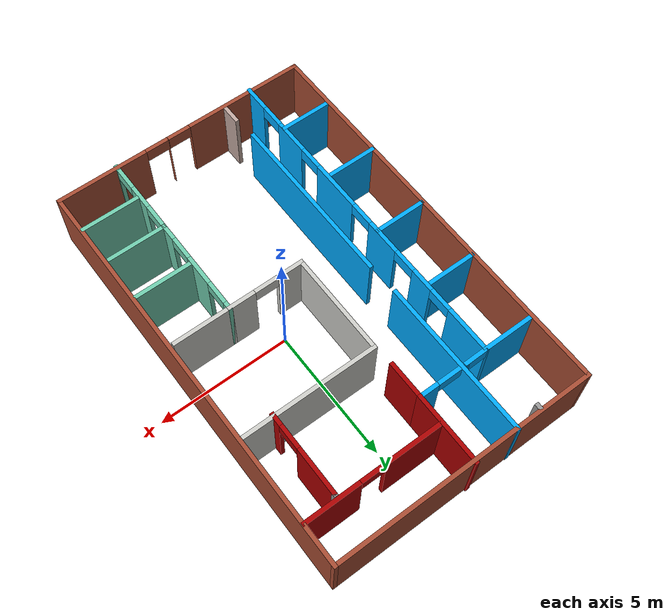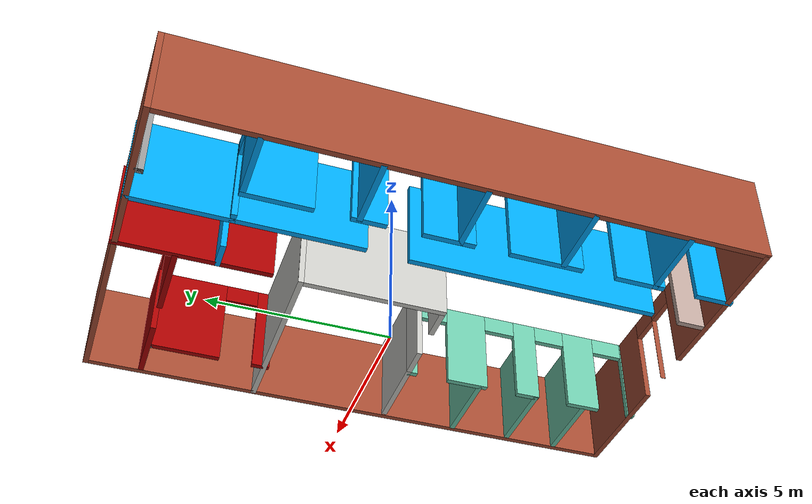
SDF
<?xml version='1.0'?>
<sdf version='1.6'>
  <model name='YTUMECHATRONICS'>
    <pose frame=''>-1.21887 -0.118428 0 0 -0 0</pose>
    <link name='Wall_1'>
      <collision name='Wall_1_Collision'>
        <geometry>
          <box>
            <size>10 0.15 2.5</size>
          </box>
        </geometry>
        <pose frame=''>0 0 1.25 0 -0 0</pose>
      </collision>
      <visual name='Wall_1_Visual'>
        <pose frame=''>0 0 1.25 0 -0 0</pose>
        <geometry>
          <box>
            <size>10 0.15 2.5</size>
          </box>
        </geometry>
        <material>
          <script>
            <uri>file://media/materials/scripts/gazebo.material</uri>
            <name>Gazebo/Bricks</name>
          </script>
          <ambient>0 0.666667 1 1</ambient>
        </material>
      </visual>
      <pose frame=''>0 7.67364 0 0 -0 0</pose>
    </link>
    <link name='Wall_14'>
      <pose frame=''>-1.22206 5.1306 0 0 -0 0</pose>
      <visual name='Wall_14_Visual_0'>
        <pose frame=''>-0.846683 0 1.25 0 -0 0</pose>
        <geometry>
          <box>
            <size>0.306633 0.15 2.5</size>
          </box>
        </geometry>
        <material>
          <script>
            <uri>file://media/materials/scripts/gazebo.material</uri>
            <name>Gazebo/Grey</name>
          </script>
          <ambient>0 0.666667 1 1</ambient>
        </material>
      </visual>
      <collision name='Wall_14_Collision_0'>
        <geometry>
          <box>
            <size>0.306633 0.15 2.5</size>
          </box>
        </geometry>
        <pose frame=''>-0.846683 0 1.25 0 -0 0</pose>
      </collision>
      <visual name='Wall_14_Visual_1'>
        <pose frame=''>0.603317 0 1.25 0 -0 0</pose>
        <geometry>
          <box>
            <size>0.793367 0.15 2.5</size>
          </box>
        </geometry>
        <material>
          <script>
            <uri>file://media/materials/scripts/gazebo.material</uri>
            <name>Gazebo/Grey</name>
          </script>
          <ambient>0 0.666667 1 1</ambient>
        </material>
      </visual>
      <collision name='Wall_14_Collision_1'>
        <geometry>
          <box>
            <size>0.793367 0.15 2.5</size>
          </box>
        </geometry>
        <pose frame=''>0.603317 0 1.25 0 -0 0</pose>
      </collision>
      <visual name='Wall_14_Visual_2'>
        <pose frame=''>-0.243367 0 2.25 0 -0 0</pose>
        <geometry>
          <box>
            <size>0.9 0.15 0.5</size>
          </box>
        </geometry>
        <material>
          <script>
            <uri>file://media/materials/scripts/gazebo.material</uri>
            <name>Gazebo/Grey</name>
          </script>
          <ambient>0 0.666667 1 1</ambient>
        </material>
      </visual>
      <collision name='Wall_14_Collision_2'>
        <geometry>
          <box>
            <size>0.9 0.15 0.5</size>
          </box>
        </geometry>
        <pose frame=''>-0.243367 0 2.25 0 -0 0</pose>
      </collision>
    </link>
    <link name='Wall_15'>
      <collision name='Wall_15_Collision'>
        <geometry>
          <box>
            <size>2.75 0.15 2.5</size>
          </box>
        </geometry>
        <pose frame=''>0 0 1.25 0 -0 0</pose>
      </collision>
      <visual name='Wall_15_Visual'>
        <pose frame=''>0 0 1.25 0 -0 0</pose>
        <geometry>
          <box>
            <size>2.75 0.15 2.5</size>
          </box>
        </geometry>
        <material>
          <script>
            <uri>file://media/materials/scripts/gazebo.material</uri>
            <name>Gazebo/Grey</name>
          </script>
          <ambient>0.666667 0 0 1</ambient>
        </material>
      </visual>
      <pose frame=''>-0.297062 6.4306 0 0 -0 1.5708</pose>
    </link>
    <link name='Wall_18'>
      <collision name='Wall_18_Collision'>
        <geometry>
          <box>
            <size>0.15 0.15 2.5</size>
          </box>
        </geometry>
        <pose frame=''>0 0 1.25 0 -0 0</pose>
      </collision>
      <visual name='Wall_18_Visual'>
        <pose frame=''>0 0 1.25 0 -0 0</pose>
        <geometry>
          <box>
            <size>0.15 0.15 2.5</size>
          </box>
        </geometry>
        <material>
          <script>
            <uri>file://media/materials/scripts/gazebo.material</uri>
            <name>Gazebo/Grey</name>
          </script>
          <ambient>1 1 1 1</ambient>
        </material>
      </visual>
      <pose frame=''>-2.97635 7.48888 0 0 -0 0</pose>
    </link>
    <link name='Wall_19'>
      <collision name='Wall_19_Collision'>
        <geometry>
          <box>
            <size>0.15 0.15 2.5</size>
          </box>
        </geometry>
        <pose frame=''>0 0 1.25 0 -0 0</pose>
      </collision>
      <visual name='Wall_19_Visual'>
        <pose frame=''>0 0 1.25 0 -0 0</pose>
        <geometry>
          <box>
            <size>0.15 0.15 2.5</size>
          </box>
        </geometry>
        <material>
          <script>
            <uri>file://media/materials/scripts/gazebo.material</uri>
            <name>Gazebo/Grey</name>
          </script>
          <ambient>1 1 1 1</ambient>
        </material>
      </visual>
      <pose frame=''>-2.97635 7.48888 0 0 -0 0</pose>
    </link>
    <link name='Wall_20'>
      <collision name='Wall_20_Collision'>
        <geometry>
          <box>
            <size>0.25 0.15 2.5</size>
          </box>
        </geometry>
        <pose frame=''>0 0 1.25 0 -0 0</pose>
      </collision>
      <visual name='Wall_20_Visual'>
        <pose frame=''>0 0 1.25 0 -0 0</pose>
        <geometry>
          <box>
            <size>0.25 0.15 2.5</size>
          </box>
        </geometry>
        <material>
          <script>
            <uri>file://media/materials/scripts/gazebo.material</uri>
            <name>Gazebo/Grey</name>
          </script>
          <ambient>1 1 1 1</ambient>
        </material>
      </visual>
      <pose frame=''>-2.97635 7.53888 0 0 -0 1.5708</pose>
    </link>
    <link name='Wall_22'>
      <collision name='Wall_22_Collision'>
        <geometry>
          <box>
            <size>2 0.15 2.5</size>
          </box>
        </geometry>
        <pose frame=''>0 0 1.25 0 -0 0</pose>
      </collision>
      <visual name='Wall_22_Visual'>
        <pose frame=''>0 0 1.25 0 -0 0</pose>
        <geometry>
          <box>
            <size>2 0.15 2.5</size>
          </box>
        </geometry>
        <material>
          <script>
            <uri>file://media/materials/scripts/gazebo.material</uri>
            <name>Gazebo/Grey</name>
          </script>
          <ambient>0 0.666667 1 1</ambient>
        </material>
      </visual>
      <pose frame=''>-3.89493 5.1194 0 0 -0 3.14159</pose>
    </link>
    <link name='Wall_26'>
      <collision name='Wall_26_Collision'>
        <geometry>
          <box>
            <size>1.5 0.15 2.5</size>
          </box>
        </geometry>
        <pose frame=''>0 0 1.25 0 -0 0</pose>
      </collision>
      <visual name='Wall_26_Visual'>
        <pose frame=''>0 0 1.25 0 -0 0</pose>
        <geometry>
          <box>
            <size>1.5 0.15 2.5</size>
          </box>
        </geometry>
        <material>
          <script>
            <uri>file://media/materials/scripts/gazebo.material</uri>
            <name>Gazebo/Grey</name>
          </script>
          <ambient>0.666667 0 0 1</ambient>
        </material>
      </visual>
      <pose frame=''>-0.297062 4.4556 0 0 0 -1.5708</pose>
    </link>
    <link name='Wall_29'>
      <pose frame=''>2.63338 -4.29756 0 0 -0 1.5708</pose>
      <visual name='Wall_29_Visual_0'>
        <pose frame=''>-3.38464 0 1.25 0 -0 0</pose>
        <geometry>
          <box>
            <size>0.230713 0.15 2.5</size>
          </box>
        </geometry>
        <material>
          <script>
            <uri>file://media/materials/scripts/gazebo.material</uri>
            <name>Gazebo/Grey</name>
          </script>
          <ambient>0.435294 0.796078 0.67451 1</ambient>
        </material>
      </visual>
      <collision name='Wall_29_Collision_0'>
        <geometry>
          <box>
            <size>0.230713 0.15 2.5</size>
          </box>
        </geometry>
        <pose frame=''>-3.38464 0 1.25 0 -0 0</pose>
      </collision>
      <visual name='Wall_29_Visual_1'>
        <pose frame=''>-1.88395 0 1.25 0 -0 0</pose>
        <geometry>
          <box>
            <size>0.970676 0.15 2.5</size>
          </box>
        </geometry>
        <material>
          <script>
            <uri>file://media/materials/scripts/gazebo.material</uri>
            <name>Gazebo/Grey</name>
          </script>
          <ambient>0.435294 0.796078 0.67451 1</ambient>
        </material>
      </visual>
      <collision name='Wall_29_Collision_1'>
        <geometry>
          <box>
            <size>0.970676 0.15 2.5</size>
          </box>
        </geometry>
        <pose frame=''>-1.88395 0 1.25 0 -0 0</pose>
      </collision>
      <visual name='Wall_29_Visual_2'>
        <pose frame=''>-0.157756 0 1.25 0 -0 0</pose>
        <geometry>
          <box>
            <size>0.68171 0.15 2.5</size>
          </box>
        </geometry>
        <material>
          <script>
            <uri>file://media/materials/scripts/gazebo.material</uri>
            <name>Gazebo/Grey</name>
          </script>
          <ambient>0.435294 0.796078 0.67451 1</ambient>
        </material>
      </visual>
      <collision name='Wall_29_Collision_2'>
        <geometry>
          <box>
            <size>0.68171 0.15 2.5</size>
          </box>
        </geometry>
        <pose frame=''>-0.157756 0 1.25 0 -0 0</pose>
      </collision>
      <visual name='Wall_29_Visual_3'>
        <pose frame=''>1.6749 0 1.25 0 -0 0</pose>
        <geometry>
          <box>
            <size>1.1836 0.15 2.5</size>
          </box>
        </geometry>
        <material>
          <script>
            <uri>file://media/materials/scripts/gazebo.material</uri>
            <name>Gazebo/Grey</name>
          </script>
          <ambient>0.435294 0.796078 0.67451 1</ambient>
        </material>
      </visual>
      <collision name='Wall_29_Collision_3'>
        <geometry>
          <box>
            <size>1.1836 0.15 2.5</size>
          </box>
        </geometry>
        <pose frame=''>1.6749 0 1.25 0 -0 0</pose>
      </collision>
      <visual name='Wall_29_Visual_4'>
        <pose frame=''>3.33335 0 1.25 0 -0 0</pose>
        <geometry>
          <box>
            <size>0.333302 0.15 2.5</size>
          </box>
        </geometry>
        <material>
          <script>
            <uri>file://media/materials/scripts/gazebo.material</uri>
            <name>Gazebo/Grey</name>
          </script>
          <ambient>0.435294 0.796078 0.67451 1</ambient>
        </material>
      </visual>
      <collision name='Wall_29_Collision_4'>
        <geometry>
          <box>
            <size>0.333302 0.15 2.5</size>
          </box>
        </geometry>
        <pose frame=''>3.33335 0 1.25 0 -0 0</pose>
      </collision>
      <visual name='Wall_29_Visual_5'>
        <pose frame=''>-2.81929 0 2.25 0 -0 0</pose>
        <geometry>
          <box>
            <size>0.9 0.15 0.5</size>
          </box>
        </geometry>
        <material>
          <script>
            <uri>file://media/materials/scripts/gazebo.material</uri>
            <name>Gazebo/Grey</name>
          </script>
          <ambient>0.435294 0.796078 0.67451 1</ambient>
        </material>
      </visual>
      <collision name='Wall_29_Collision_5'>
        <geometry>
          <box>
            <size>0.9 0.15 0.5</size>
          </box>
        </geometry>
        <pose frame=''>-2.81929 0 2.25 0 -0 0</pose>
      </collision>
      <visual name='Wall_29_Visual_6'>
        <pose frame=''>-0.948611 0 2.25 0 -0 0</pose>
        <geometry>
          <box>
            <size>0.9 0.15 0.5</size>
          </box>
        </geometry>
        <material>
          <script>
            <uri>file://media/materials/scripts/gazebo.material</uri>
            <name>Gazebo/Grey</name>
          </script>
          <ambient>0.435294 0.796078 0.67451 1</ambient>
        </material>
      </visual>
      <collision name='Wall_29_Collision_6'>
        <geometry>
          <box>
            <size>0.9 0.15 0.5</size>
          </box>
        </geometry>
        <pose frame=''>-0.948611 0 2.25 0 -0 0</pose>
      </collision>
      <visual name='Wall_29_Visual_7'>
        <pose frame=''>0.633099 0 2.25 0 -0 0</pose>
        <geometry>
          <box>
            <size>0.9 0.15 0.5</size>
          </box>
        </geometry>
        <material>
          <script>
            <uri>file://media/materials/scripts/gazebo.material</uri>
            <name>Gazebo/Grey</name>
          </script>
          <ambient>0.435294 0.796078 0.67451 1</ambient>
        </material>
      </visual>
      <collision name='Wall_29_Collision_7'>
        <geometry>
          <box>
            <size>0.9 0.15 0.5</size>
          </box>
        </geometry>
        <pose frame=''>0.633099 0 2.25 0 -0 0</pose>
      </collision>
      <visual name='Wall_29_Visual_8'>
        <pose frame=''>2.7167 0 2.25 0 -0 0</pose>
        <geometry>
          <box>
            <size>0.9 0.15 0.5</size>
          </box>
        </geometry>
        <material>
          <script>
            <uri>file://media/materials/scripts/gazebo.material</uri>
            <name>Gazebo/Grey</name>
          </script>
          <ambient>0.435294 0.796078 0.67451 1</ambient>
        </material>
      </visual>
      <collision name='Wall_29_Collision_8'>
        <geometry>
          <box>
            <size>0.9 0.15 0.5</size>
          </box>
        </geometry>
        <pose frame=''>2.7167 0 2.25 0 -0 0</pose>
      </collision>
    </link>
    <link name='Wall_30'>
      <pose frame=''>1.20838 -0.872559 0 0 -0 3.14159</pose>
      <visual name='Wall_30_Visual_0'>
        <pose frame=''>-0.971252 0 1.25 0 -0 0</pose>
        <geometry>
          <box>
            <size>1.0575 0.15 2.5</size>
          </box>
        </geometry>
        <material>
          <script>
            <uri>file://media/materials/scripts/gazebo.material</uri>
            <name>Gazebo/CeilingTiled</name>
          </script>
          <ambient>0.996078 0.47451 0.0196078 1</ambient>
        </material>
      </visual>
      <collision name='Wall_30_Collision_0'>
        <geometry>
          <box>
            <size>1.0575 0.15 2.5</size>
          </box>
        </geometry>
        <pose frame=''>-0.971252 0 1.25 0 -0 0</pose>
      </collision>
      <visual name='Wall_30_Visual_1'>
        <pose frame=''>0.978748 0 1.25 0 -0 0</pose>
        <geometry>
          <box>
            <size>1.0425 0.15 2.5</size>
          </box>
        </geometry>
        <material>
          <script>
            <uri>file://media/materials/scripts/gazebo.material</uri>
            <name>Gazebo/CeilingTiled</name>
          </script>
          <ambient>0.996078 0.47451 0.0196078 1</ambient>
        </material>
      </visual>
      <collision name='Wall_30_Collision_1'>
        <geometry>
          <box>
            <size>1.0425 0.15 2.5</size>
          </box>
        </geometry>
        <pose frame=''>0.978748 0 1.25 0 -0 0</pose>
      </collision>
      <visual name='Wall_30_Visual_2'>
        <pose frame=''>0.007497 0 2.25 0 -0 0</pose>
        <geometry>
          <box>
            <size>0.9 0.15 0.5</size>
          </box>
        </geometry>
        <material>
          <script>
            <uri>file://media/materials/scripts/gazebo.material</uri>
            <name>Gazebo/CeilingTiled</name>
          </script>
          <ambient>0.996078 0.47451 0.0196078 1</ambient>
        </material>
      </visual>
      <collision name='Wall_30_Collision_2'>
        <geometry>
          <box>
            <size>0.9 0.15 0.5</size>
          </box>
        </geometry>
        <pose frame=''>0.007497 0 2.25 0 -0 0</pose>
      </collision>
    </link>
    <link name='Wall_32'>
      <collision name='Wall_32_Collision'>
        <geometry>
          <box>
            <size>5.25 0.15 2.5</size>
          </box>
        </geometry>
        <pose frame=''>0 0 1.25 0 -0 0</pose>
      </collision>
      <visual name='Wall_32_Visual'>
        <pose frame=''>0 0 1.25 0 -0 0</pose>
        <geometry>
          <box>
            <size>5.25 0.15 2.5</size>
          </box>
        </geometry>
        <material>
          <script>
            <uri>file://media/materials/scripts/gazebo.material</uri>
            <name>Gazebo/CeilingTiled</name>
          </script>
          <ambient>0.996078 0.47451 0.0196078 1</ambient>
        </material>
      </visual>
      <pose frame=''>2.33338 2.97744 0 0 -0 0</pose>
    </link>
    <link name='Wall_34'>
      <collision name='Wall_34_Collision'>
        <geometry>
          <box>
            <size>2.25 0.15 2.5</size>
          </box>
        </geometry>
        <pose frame=''>0 0 1.25 0 -0 0</pose>
      </collision>
      <visual name='Wall_34_Visual'>
        <pose frame=''>0 0 1.25 0 -0 0</pose>
        <geometry>
          <box>
            <size>2.25 0.15 2.5</size>
          </box>
        </geometry>
        <material>
          <script>
            <uri>file://media/materials/scripts/gazebo.material</uri>
            <name>Gazebo/CeilingTiled</name>
          </script>
          <ambient>0.996078 0.47451 0.0196078 1</ambient>
        </material>
      </visual>
      <pose frame=''>3.68338 -0.872559 0 0 -0 0</pose>
    </link>
    <link name='Wall_37'>
      <pose frame=''>2.34536 6.18103 0 0 -0 0</pose>
      <visual name='Wall_37_Visual_0'>
        <pose frame=''>-1.52205 0 1.25 0 -0 0</pose>
        <geometry>
          <box>
            <size>2.20591 0.15 2.5</size>
          </box>
        </geometry>
        <material>
          <script>
            <uri>file://media/materials/scripts/gazebo.material</uri>
            <name>Gazebo/Grey</name>
          </script>
          <ambient>0.666667 0 0 1</ambient>
        </material>
      </visual>
      <collision name='Wall_37_Collision_0'>
        <geometry>
          <box>
            <size>2.20591 0.15 2.5</size>
          </box>
        </geometry>
        <pose frame=''>-1.52205 0 1.25 0 -0 0</pose>
      </collision>
      <visual name='Wall_37_Visual_1'>
        <pose frame=''>1.55295 0 1.25 0 -0 0</pose>
        <geometry>
          <box>
            <size>2.14409 0.15 2.5</size>
          </box>
        </geometry>
        <material>
          <script>
            <uri>file://media/materials/scripts/gazebo.material</uri>
            <name>Gazebo/Grey</name>
          </script>
          <ambient>0.666667 0 0 1</ambient>
        </material>
      </visual>
      <collision name='Wall_37_Collision_1'>
        <geometry>
          <box>
            <size>2.14409 0.15 2.5</size>
          </box>
        </geometry>
        <pose frame=''>1.55295 0 1.25 0 -0 0</pose>
      </collision>
      <visual name='Wall_37_Visual_2'>
        <pose frame=''>0.030908 0 2.25 0 -0 0</pose>
        <geometry>
          <box>
            <size>0.9 0.15 0.5</size>
          </box>
        </geometry>
        <material>
          <script>
            <uri>file://media/materials/scripts/gazebo.material</uri>
            <name>Gazebo/Grey</name>
          </script>
          <ambient>0.666667 0 0 1</ambient>
        </material>
      </visual>
      <collision name='Wall_37_Collision_2'>
        <geometry>
          <box>
            <size>0.9 0.15 0.5</size>
          </box>
        </geometry>
        <pose frame=''>0.030908 0 2.25 0 -0 0</pose>
      </collision>
    </link>
    <link name='Wall_39'>
      <pose frame=''>3.65716 4.47263 0 0 -0 1.5708</pose>
      <visual name='Wall_39_Visual_0'>
        <pose frame=''>-1.37852 0 1.25 0 -0 0</pose>
        <geometry>
          <box>
            <size>0.492966 0.15 2.5</size>
          </box>
        </geometry>
        <material>
          <script>
            <uri>file://media/materials/scripts/gazebo.material</uri>
            <name>Gazebo/Grey</name>
          </script>
          <ambient>0.666667 0 0 1</ambient>
        </material>
      </visual>
      <collision name='Wall_39_Collision_0'>
        <geometry>
          <box>
            <size>0.492966 0.15 2.5</size>
          </box>
        </geometry>
        <pose frame=''>-1.37852 0 1.25 0 -0 0</pose>
      </collision>
      <visual name='Wall_39_Visual_1'>
        <pose frame=''>0.696483 0 1.25 0 -0 0</pose>
        <geometry>
          <box>
            <size>1.85703 0.15 2.5</size>
          </box>
        </geometry>
        <material>
          <script>
            <uri>file://media/materials/scripts/gazebo.material</uri>
            <name>Gazebo/Grey</name>
          </script>
          <ambient>0.666667 0 0 1</ambient>
        </material>
      </visual>
      <collision name='Wall_39_Collision_1'>
        <geometry>
          <box>
            <size>1.85703 0.15 2.5</size>
          </box>
        </geometry>
        <pose frame=''>0.696483 0 1.25 0 -0 0</pose>
      </collision>
      <visual name='Wall_39_Visual_2'>
        <pose frame=''>-0.682034 0 2.25 0 -0 0</pose>
        <geometry>
          <box>
            <size>0.9 0.15 0.5</size>
          </box>
        </geometry>
        <material>
          <script>
            <uri>file://media/materials/scripts/gazebo.material</uri>
            <name>Gazebo/Grey</name>
          </script>
          <ambient>0.666667 0 0 1</ambient>
        </material>
      </visual>
      <collision name='Wall_39_Collision_2'>
        <geometry>
          <box>
            <size>0.9 0.15 0.5</size>
          </box>
        </geometry>
        <pose frame=''>-0.682034 0 2.25 0 -0 0</pose>
      </collision>
    </link>
    <link name='Wall_4'>
      <collision name='Wall_4_Collision'>
        <geometry>
          <box>
            <size>15.5 0.15 2.5</size>
          </box>
        </geometry>
        <pose frame=''>0 0 1.25 0 -0 0</pose>
      </collision>
      <visual name='Wall_4_Visual'>
        <pose frame=''>0 0 1.25 0 -0 0</pose>
        <geometry>
          <box>
            <size>15.5 0.15 2.5</size>
          </box>
        </geometry>
        <material>
          <script>
            <uri>file://media/materials/scripts/gazebo.material</uri>
            <name>Gazebo/Bricks</name>
          </script>
          <ambient>1 1 1 1</ambient>
        </material>
      </visual>
      <pose frame=''>-4.925 -0.001356 0 0 0 -1.5708</pose>
    </link>
    <link name='Wall_41'>
      <collision name='Wall_41_Collision'>
        <geometry>
          <box>
            <size>0.15 0.15 2.5</size>
          </box>
        </geometry>
        <pose frame=''>0 0 1.25 0 -0 0</pose>
      </collision>
      <visual name='Wall_41_Visual'>
        <pose frame=''>0 0 1.25 0 -0 0</pose>
        <geometry>
          <box>
            <size>0.15 0.15 2.5</size>
          </box>
        </geometry>
        <material>
          <script>
            <uri>file://media/materials/scripts/gazebo.material</uri>
            <name>Gazebo/Grey</name>
          </script>
          <ambient>1 1 1 1</ambient>
        </material>
      </visual>
      <pose frame=''>3.65716 6.02263 0 0 -0 0</pose>
    </link>
    <link name='Wall_42'>
      <collision name='Wall_42_Collision'>
        <geometry>
          <box>
            <size>0.15 0.15 2.5</size>
          </box>
        </geometry>
        <pose frame=''>0 0 1.25 0 -0 0</pose>
      </collision>
      <visual name='Wall_42_Visual'>
        <pose frame=''>0 0 1.25 0 -0 0</pose>
        <geometry>
          <box>
            <size>0.15 0.15 2.5</size>
          </box>
        </geometry>
        <material>
          <script>
            <uri>file://media/materials/scripts/gazebo.material</uri>
            <name>Gazebo/Grey</name>
          </script>
          <ambient>1 1 1 1</ambient>
        </material>
      </visual>
      <pose frame=''>3.65716 6.02263 0 0 -0 0</pose>
    </link>
    <link name='Wall_44'>
      <collision name='Wall_44_Collision'>
        <geometry>
          <box>
            <size>2.25 0.15 2.5</size>
          </box>
        </geometry>
        <pose frame=''>0 0 1.25 0 -0 0</pose>
      </collision>
      <visual name='Wall_44_Visual'>
        <pose frame=''>0 0 1.25 0 -0 0</pose>
        <geometry>
          <box>
            <size>2.25 0.15 2.5</size>
          </box>
        </geometry>
        <material>
          <script>
            <uri>file://media/materials/scripts/gazebo.material</uri>
            <name>Gazebo/Grey</name>
          </script>
          <ambient>0.435294 0.796078 0.67451 1</ambient>
        </material>
      </visual>
      <pose frame=''>3.75665 -2.99798 0 0 -0 0</pose>
    </link>
    <link name='Wall_46'>
      <collision name='Wall_46_Collision'>
        <geometry>
          <box>
            <size>2.25 0.15 2.5</size>
          </box>
        </geometry>
        <pose frame=''>0 0 1.25 0 -0 0</pose>
      </collision>
      <visual name='Wall_46_Visual'>
        <pose frame=''>0 0 1.25 0 -0 0</pose>
        <geometry>
          <box>
            <size>2.25 0.15 2.5</size>
          </box>
        </geometry>
        <material>
          <script>
            <uri>file://media/materials/scripts/gazebo.material</uri>
            <name>Gazebo/Grey</name>
          </script>
          <ambient>0.435294 0.796078 0.67451 1</ambient>
        </material>
      </visual>
      <pose frame=''>3.71642 -4.70764 0 0 -0 0</pose>
    </link>
    <link name='Wall_48'>
      <collision name='Wall_48_Collision'>
        <geometry>
          <box>
            <size>2.25 0.15 2.5</size>
          </box>
        </geometry>
        <pose frame=''>0 0 1.25 0 -0 0</pose>
      </collision>
      <visual name='Wall_48_Visual'>
        <pose frame=''>0 0 1.25 0 -0 0</pose>
        <geometry>
          <box>
            <size>2.25 0.15 2.5</size>
          </box>
        </geometry>
        <material>
          <script>
            <uri>file://media/materials/scripts/gazebo.material</uri>
            <name>Gazebo/Grey</name>
          </script>
          <ambient>0.435294 0.796078 0.67451 1</ambient>
        </material>
      </visual>
      <pose frame=''>3.81699 -6.21615 0 0 -0 0</pose>
    </link>
    <link name='Wall_5'>
      <pose frame=''>0 -7.67636 0 0 -0 0</pose>
      <visual name='Wall_5_Visual_0'>
        <pose frame=''>-2.66762 0 1.25 0 -0 0</pose>
        <geometry>
          <box>
            <size>4.66475 0.15 2.5</size>
          </box>
        </geometry>
        <material>
          <script>
            <uri>file://media/materials/scripts/gazebo.material</uri>
            <name>Gazebo/Bricks</name>
          </script>
          <ambient>1 1 1 1</ambient>
        </material>
      </visual>
      <collision name='Wall_5_Collision_0'>
        <geometry>
          <box>
            <size>4.66475 0.15 2.5</size>
          </box>
        </geometry>
        <pose frame=''>-2.66762 0 1.25 0 -0 0</pose>
      </collision>
      <visual name='Wall_5_Visual_1'>
        <pose frame=''>0.567307 0 1.25 0 -0 0</pose>
        <geometry>
          <box>
            <size>0.005111 0.15 2.5</size>
          </box>
        </geometry>
        <material>
          <script>
            <uri>file://media/materials/scripts/gazebo.material</uri>
            <name>Gazebo/Bricks</name>
          </script>
          <ambient>1 1 1 1</ambient>
        </material>
      </visual>
      <collision name='Wall_5_Collision_1'>
        <geometry>
          <box>
            <size>0.005111 0.15 2.5</size>
          </box>
        </geometry>
        <pose frame=''>0.567307 0 1.25 0 -0 0</pose>
      </collision>
      <visual name='Wall_5_Visual_2'>
        <pose frame=''>3.23493 0 1.25 0 -0 0</pose>
        <geometry>
          <box>
            <size>3.53014 0.15 2.5</size>
          </box>
        </geometry>
        <material>
          <script>
            <uri>file://media/materials/scripts/gazebo.material</uri>
            <name>Gazebo/Bricks</name>
          </script>
          <ambient>1 1 1 1</ambient>
        </material>
      </visual>
      <collision name='Wall_5_Collision_2'>
        <geometry>
          <box>
            <size>3.53014 0.15 2.5</size>
          </box>
        </geometry>
        <pose frame=''>3.23493 0 1.25 0 -0 0</pose>
      </collision>
      <visual name='Wall_5_Visual_3'>
        <pose frame=''>0.114751 0 2.25 0 -0 0</pose>
        <geometry>
          <box>
            <size>0.9 0.15 0.5</size>
          </box>
        </geometry>
        <material>
          <script>
            <uri>file://media/materials/scripts/gazebo.material</uri>
            <name>Gazebo/Bricks</name>
          </script>
          <ambient>1 1 1 1</ambient>
        </material>
      </visual>
      <collision name='Wall_5_Collision_3'>
        <geometry>
          <box>
            <size>0.9 0.15 0.5</size>
          </box>
        </geometry>
        <pose frame=''>0.114751 0 2.25 0 -0 0</pose>
      </collision>
      <visual name='Wall_5_Visual_4'>
        <pose frame=''>1.01986 0 2.25 0 -0 0</pose>
        <geometry>
          <box>
            <size>0.9 0.15 0.5</size>
          </box>
        </geometry>
        <material>
          <script>
            <uri>file://media/materials/scripts/gazebo.material</uri>
            <name>Gazebo/Bricks</name>
          </script>
          <ambient>1 1 1 1</ambient>
        </material>
      </visual>
      <collision name='Wall_5_Collision_4'>
        <geometry>
          <box>
            <size>0.9 0.15 0.5</size>
          </box>
        </geometry>
        <pose frame=''>1.01986 0 2.25 0 -0 0</pose>
      </collision>
    </link>
    <link name='Wall_54'>
      <collision name='Wall_54_Collision'>
        <geometry>
          <box>
            <size>4 0.15 2.5</size>
          </box>
        </geometry>
        <pose frame=''>0 0 1.25 0 -0 0</pose>
      </collision>
      <visual name='Wall_54_Visual'>
        <pose frame=''>0 0 1.25 0 -0 0</pose>
        <geometry>
          <box>
            <size>4 0.15 2.5</size>
          </box>
        </geometry>
        <material>
          <script>
            <uri>file://media/materials/scripts/gazebo.material</uri>
            <name>Gazebo/CeilingTiled</name>
          </script>
          <ambient>0.996078 0.47451 0.0196078 1</ambient>
        </material>
      </visual>
      <pose frame=''>-0.216619 1.05244 0 0 0 -1.5708</pose>
    </link>
    <link name='Wall_56'>
      <pose frame=''>-2.55849 5.125 0 0 -0 0.013614</pose>
      <visual name='Wall_56_Visual_0'>
        <pose frame=''>-0.455308 0 1.25 0 -0 0</pose>
        <geometry>
          <box>
            <size>0.062324 0.15 2.5</size>
          </box>
        </geometry>
        <material>
          <script>
            <uri>file://media/materials/scripts/gazebo.material</uri>
            <name>Gazebo/Grey</name>
          </script>
          <ambient>0 0.666667 1 1</ambient>
        </material>
      </visual>
      <collision name='Wall_56_Collision_0'>
        <geometry>
          <box>
            <size>0.062324 0.15 2.5</size>
          </box>
        </geometry>
        <pose frame=''>-0.455308 0 1.25 0 -0 0</pose>
      </collision>
      <visual name='Wall_56_Visual_1'>
        <pose frame=''>0.481162 0 1.25 0 -0 0</pose>
        <geometry>
          <box>
            <size>0.010616 0.15 2.5</size>
          </box>
        </geometry>
        <material>
          <script>
            <uri>file://media/materials/scripts/gazebo.material</uri>
            <name>Gazebo/Grey</name>
          </script>
          <ambient>0 0.666667 1 1</ambient>
        </material>
      </visual>
      <collision name='Wall_56_Collision_1'>
        <geometry>
          <box>
            <size>0.010616 0.15 2.5</size>
          </box>
        </geometry>
        <pose frame=''>0.481162 0 1.25 0 -0 0</pose>
      </collision>
      <visual name='Wall_56_Visual_2'>
        <pose frame=''>0.025854 0 2.25 0 -0 0</pose>
        <geometry>
          <box>
            <size>0.9 0.15 0.5</size>
          </box>
        </geometry>
        <material>
          <script>
            <uri>file://media/materials/scripts/gazebo.material</uri>
            <name>Gazebo/Grey</name>
          </script>
          <ambient>0 0.666667 1 1</ambient>
        </material>
      </visual>
      <collision name='Wall_56_Collision_2'>
        <geometry>
          <box>
            <size>0.9 0.15 0.5</size>
          </box>
        </geometry>
        <pose frame=''>0.025854 0 2.25 0 -0 0</pose>
      </collision>
    </link>
    <link name='Wall_58'>
      <pose frame=''>-2.96993 -1.3056 0 0 0 -1.5708</pose>
      <visual name='Wall_58_Visual_0'>
        <pose frame=''>-5.59066 0 1.25 0 -0 0</pose>
        <geometry>
          <box>
            <size>1.81869 0.15 2.5</size>
          </box>
        </geometry>
        <material>
          <script>
            <uri>file://media/materials/scripts/gazebo.material</uri>
            <name>Gazebo/Grey</name>
          </script>
          <ambient>0 0.666667 1 1</ambient>
        </material>
      </visual>
      <collision name='Wall_58_Collision_0'>
        <geometry>
          <box>
            <size>1.81869 0.15 2.5</size>
          </box>
        </geometry>
        <pose frame=''>-5.59066 0 1.25 0 -0 0</pose>
      </collision>
      <visual name='Wall_58_Visual_1'>
        <pose frame=''>-3.3262 0 1.25 0 -0 0</pose>
        <geometry>
          <box>
            <size>0.910221 0.15 2.5</size>
          </box>
        </geometry>
        <material>
          <script>
            <uri>file://media/materials/scripts/gazebo.material</uri>
            <name>Gazebo/Grey</name>
          </script>
          <ambient>0 0.666667 1 1</ambient>
        </material>
      </visual>
      <collision name='Wall_58_Collision_1'>
        <geometry>
          <box>
            <size>0.910221 0.15 2.5</size>
          </box>
        </geometry>
        <pose frame=''>-3.3262 0 1.25 0 -0 0</pose>
      </collision>
      <visual name='Wall_58_Visual_2'>
        <pose frame=''>-1.28468 0 1.25 0 -0 0</pose>
        <geometry>
          <box>
            <size>1.37283 0.15 2.5</size>
          </box>
        </geometry>
        <material>
          <script>
            <uri>file://media/materials/scripts/gazebo.material</uri>
            <name>Gazebo/Grey</name>
          </script>
          <ambient>0 0.666667 1 1</ambient>
        </material>
      </visual>
      <collision name='Wall_58_Collision_2'>
        <geometry>
          <box>
            <size>1.37283 0.15 2.5</size>
          </box>
        </geometry>
        <pose frame=''>-1.28468 0 1.25 0 -0 0</pose>
      </collision>
      <visual name='Wall_58_Visual_3'>
        <pose frame=''>1.28986 0 1.25 0 -0 0</pose>
        <geometry>
          <box>
            <size>1.97624 0.15 2.5</size>
          </box>
        </geometry>
        <material>
          <script>
            <uri>file://media/materials/scripts/gazebo.material</uri>
            <name>Gazebo/Grey</name>
          </script>
          <ambient>0 0.666667 1 1</ambient>
        </material>
      </visual>
      <collision name='Wall_58_Collision_3'>
        <geometry>
          <box>
            <size>1.97624 0.15 2.5</size>
          </box>
        </geometry>
        <pose frame=''>1.28986 0 1.25 0 -0 0</pose>
      </collision>
      <visual name='Wall_58_Visual_4'>
        <pose frame=''>3.8644 0 1.25 0 -0 0</pose>
        <geometry>
          <box>
            <size>1.37283 0.15 2.5</size>
          </box>
        </geometry>
        <material>
          <script>
            <uri>file://media/materials/scripts/gazebo.material</uri>
            <name>Gazebo/Grey</name>
          </script>
          <ambient>0 0.666667 1 1</ambient>
        </material>
      </visual>
      <collision name='Wall_58_Collision_4'>
        <geometry>
          <box>
            <size>1.37283 0.15 2.5</size>
          </box>
        </geometry>
        <pose frame=''>3.8644 0 1.25 0 -0 0</pose>
      </collision>
      <visual name='Wall_58_Visual_5'>
        <pose frame=''>5.97541 0 1.25 0 -0 0</pose>
        <geometry>
          <box>
            <size>1.04919 0.15 2.5</size>
          </box>
        </geometry>
        <material>
          <script>
            <uri>file://media/materials/scripts/gazebo.material</uri>
            <name>Gazebo/Grey</name>
          </script>
          <ambient>0 0.666667 1 1</ambient>
        </material>
      </visual>
      <collision name='Wall_58_Collision_5'>
        <geometry>
          <box>
            <size>1.04919 0.15 2.5</size>
          </box>
        </geometry>
        <pose frame=''>5.97541 0 1.25 0 -0 0</pose>
      </collision>
      <visual name='Wall_58_Visual_6'>
        <pose frame=''>-4.23131 0 2.25 0 -0 0</pose>
        <geometry>
          <box>
            <size>0.9 0.15 0.5</size>
          </box>
        </geometry>
        <material>
          <script>
            <uri>file://media/materials/scripts/gazebo.material</uri>
            <name>Gazebo/Grey</name>
          </script>
          <ambient>0 0.666667 1 1</ambient>
        </material>
      </visual>
      <collision name='Wall_58_Collision_6'>
        <geometry>
          <box>
            <size>0.9 0.15 0.5</size>
          </box>
        </geometry>
        <pose frame=''>-4.23131 0 2.25 0 -0 0</pose>
      </collision>
      <visual name='Wall_58_Visual_7'>
        <pose frame=''>-2.42109 0 2.25 0 -0 0</pose>
        <geometry>
          <box>
            <size>0.9 0.15 0.5</size>
          </box>
        </geometry>
        <material>
          <script>
            <uri>file://media/materials/scripts/gazebo.material</uri>
            <name>Gazebo/Grey</name>
          </script>
          <ambient>0 0.666667 1 1</ambient>
        </material>
      </visual>
      <collision name='Wall_58_Collision_7'>
        <geometry>
          <box>
            <size>0.9 0.15 0.5</size>
          </box>
        </geometry>
        <pose frame=''>-2.42109 0 2.25 0 -0 0</pose>
      </collision>
      <visual name='Wall_58_Visual_8'>
        <pose frame=''>-0.148259 0 2.25 0 -0 0</pose>
        <geometry>
          <box>
            <size>0.9 0.15 0.5</size>
          </box>
        </geometry>
        <material>
          <script>
            <uri>file://media/materials/scripts/gazebo.material</uri>
            <name>Gazebo/Grey</name>
          </script>
          <ambient>0 0.666667 1 1</ambient>
        </material>
      </visual>
      <collision name='Wall_58_Collision_8'>
        <geometry>
          <box>
            <size>0.9 0.15 0.5</size>
          </box>
        </geometry>
        <pose frame=''>-0.148259 0 2.25 0 -0 0</pose>
      </collision>
      <visual name='Wall_58_Visual_9'>
        <pose frame=''>2.72798 0 2.25 0 -0 0</pose>
        <geometry>
          <box>
            <size>0.9 0.15 0.5</size>
          </box>
        </geometry>
        <material>
          <script>
            <uri>file://media/materials/scripts/gazebo.material</uri>
            <name>Gazebo/Grey</name>
          </script>
          <ambient>0 0.666667 1 1</ambient>
        </material>
      </visual>
      <collision name='Wall_58_Collision_9'>
        <geometry>
          <box>
            <size>0.9 0.15 0.5</size>
          </box>
        </geometry>
        <pose frame=''>2.72798 0 2.25 0 -0 0</pose>
      </collision>
      <visual name='Wall_58_Visual_10'>
        <pose frame=''>5.00082 0 2.25 0 -0 0</pose>
        <geometry>
          <box>
            <size>0.9 0.15 0.5</size>
          </box>
        </geometry>
        <material>
          <script>
            <uri>file://media/materials/scripts/gazebo.material</uri>
            <name>Gazebo/Grey</name>
          </script>
          <ambient>0 0.666667 1 1</ambient>
        </material>
      </visual>
      <collision name='Wall_58_Collision_10'>
        <geometry>
          <box>
            <size>0.9 0.15 0.5</size>
          </box>
        </geometry>
        <pose frame=''>5.00082 0 2.25 0 -0 0</pose>
      </collision>
    </link>
    <link name='Wall_6'>
      <collision name='Wall_6_Collision'>
        <geometry>
          <box>
            <size>15.5 0.15 2.5</size>
          </box>
        </geometry>
        <pose frame=''>0 0 1.25 0 -0 0</pose>
      </collision>
      <visual name='Wall_6_Visual'>
        <pose frame=''>0 0 1.25 0 -0 0</pose>
        <geometry>
          <box>
            <size>15.5 0.15 2.5</size>
          </box>
        </geometry>
        <material>
          <script>
            <uri>file://media/materials/scripts/gazebo.material</uri>
            <name>Gazebo/Bricks</name>
          </script>
          <ambient>1 1 1 1</ambient>
        </material>
      </visual>
      <pose frame=''>4.925 -0.001356 0 0 -0 1.5708</pose>
    </link>
    <link name='Wall_60'>
      <collision name='Wall_60_Collision'>
        <geometry>
          <box>
            <size>2 0.15 2.5</size>
          </box>
        </geometry>
        <pose frame=''>0 0 1.25 0 -0 0</pose>
      </collision>
      <visual name='Wall_60_Visual'>
        <pose frame=''>0 0 1.25 0 -0 0</pose>
        <geometry>
          <box>
            <size>2 0.15 2.5</size>
          </box>
        </geometry>
        <material>
          <script>
            <uri>file://media/materials/scripts/gazebo.material</uri>
            <name>Gazebo/Grey</name>
          </script>
          <ambient>0 0.666667 1 1</ambient>
        </material>
      </visual>
      <pose frame=''>-3.9283 2.26019 0 0 -0 0</pose>
    </link>
    <link name='Wall_62'>
      <collision name='Wall_62_Collision'>
        <geometry>
          <box>
            <size>2 0.15 2.5</size>
          </box>
        </geometry>
        <pose frame=''>0 0 1.25 0 -0 0</pose>
      </collision>
      <visual name='Wall_62_Visual'>
        <pose frame=''>0 0 1.25 0 -0 0</pose>
        <geometry>
          <box>
            <size>2 0.15 2.5</size>
          </box>
        </geometry>
        <material>
          <script>
            <uri>file://media/materials/scripts/gazebo.material</uri>
            <name>Gazebo/Grey</name>
          </script>
          <ambient>0 0.666667 1 1</ambient>
        </material>
      </visual>
      <pose frame=''>-3.90819 -0.314349 0 0 -0 0</pose>
    </link>
    <link name='Wall_64'>
      <collision name='Wall_64_Collision'>
        <geometry>
          <box>
            <size>2 0.15 2.5</size>
          </box>
        </geometry>
        <pose frame=''>0 0 1.25 0 -0 0</pose>
      </collision>
      <visual name='Wall_64_Visual'>
        <pose frame=''>0 0 1.25 0 -0 0</pose>
        <geometry>
          <box>
            <size>2 0.15 2.5</size>
          </box>
        </geometry>
        <material>
          <script>
            <uri>file://media/materials/scripts/gazebo.material</uri>
            <name>Gazebo/Grey</name>
          </script>
          <ambient>0 0.666667 1 1</ambient>
        </material>
      </visual>
      <pose frame=''>-3.96853 -3.0498 0 0 -0 0</pose>
    </link>
    <link name='Wall_66'>
      <collision name='Wall_66_Collision'>
        <geometry>
          <box>
            <size>2 0.15 2.5</size>
          </box>
        </geometry>
        <pose frame=''>0 0 1.25 0 -0 0</pose>
      </collision>
      <visual name='Wall_66_Visual'>
        <pose frame=''>0 0 1.25 0 -0 0</pose>
        <geometry>
          <box>
            <size>2 0.15 2.5</size>
          </box>
        </geometry>
        <material>
          <script>
            <uri>file://media/materials/scripts/gazebo.material</uri>
            <name>Gazebo/Grey</name>
          </script>
          <ambient>0 0.666667 1 1</ambient>
        </material>
      </visual>
      <pose frame=''>-3.90819 -5.60422 0 0 -0 0</pose>
    </link>
    <link name='Wall_70'>
      <collision name='Wall_70_Collision'>
        <geometry>
          <box>
            <size>6 0.15 2.5</size>
          </box>
        </geometry>
        <pose frame=''>0 0 1.25 0 -0 0</pose>
      </collision>
      <visual name='Wall_70_Visual'>
        <pose frame=''>0 0 1.25 0 -0 0</pose>
        <geometry>
          <box>
            <size>6 0.15 2.5</size>
          </box>
        </geometry>
        <material>
          <script>
            <uri>file://media/materials/scripts/gazebo.material</uri>
            <name>Gazebo/Grey</name>
          </script>
          <ambient>0 0.666667 1 1</ambient>
        </material>
      </visual>
      <pose frame=''>-1.98838 4.76763 0 0 0 -1.5708</pose>
    </link>
    <link name='Wall_72'>
      <collision name='Wall_72_Collision'>
        <geometry>
          <box>
            <size>6.75 0.15 2.5</size>
          </box>
        </geometry>
        <pose frame=''>0 0 1.25 0 -0 0</pose>
      </collision>
      <visual name='Wall_72_Visual'>
        <pose frame=''>0 0 1.25 0 -0 0</pose>
        <geometry>
          <box>
            <size>6.75 0.15 2.5</size>
          </box>
        </geometry>
        <material>
          <script>
            <uri>file://media/materials/scripts/gazebo.material</uri>
            <name>Gazebo/Grey</name>
          </script>
          <ambient>0 0.666667 1 1</ambient>
        </material>
      </visual>
      <pose frame=''>-1.92804 -2.70746 0 0 0 -1.5708</pose>
    </link>
    <link name='Wall_74'>
      <collision name='Wall_74_Collision'>
        <geometry>
          <box>
            <size>0.75 0.15 2.5</size>
          </box>
        </geometry>
        <pose frame=''>0 0 1.25 0 -0 0</pose>
      </collision>
      <visual name='Wall_74_Visual'>
        <pose frame=''>0 0 1.25 0 -0 0</pose>
        <geometry>
          <box>
            <size>0.75 0.15 2.5</size>
          </box>
        </geometry>
        <material>
          <script>
            <uri>file://media/materials/scripts/gazebo.material</uri>
            <name>Gazebo/Grey</name>
          </script>
          <ambient>0.760784 0.662745 0.627451 1</ambient>
        </material>
      </visual>
      <pose frame=''>-1.82747 -7.22994 0 0 0 -1.5708</pose>
    </link>
    <static>1</static>
  </model>
</sdf>
